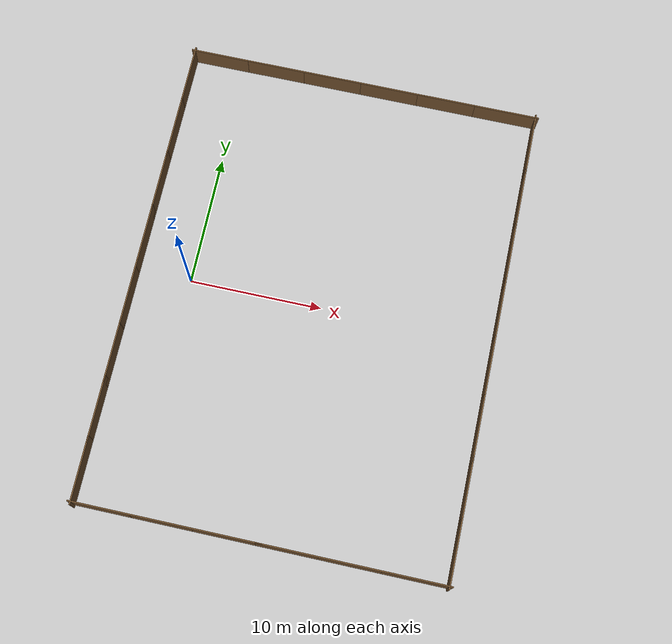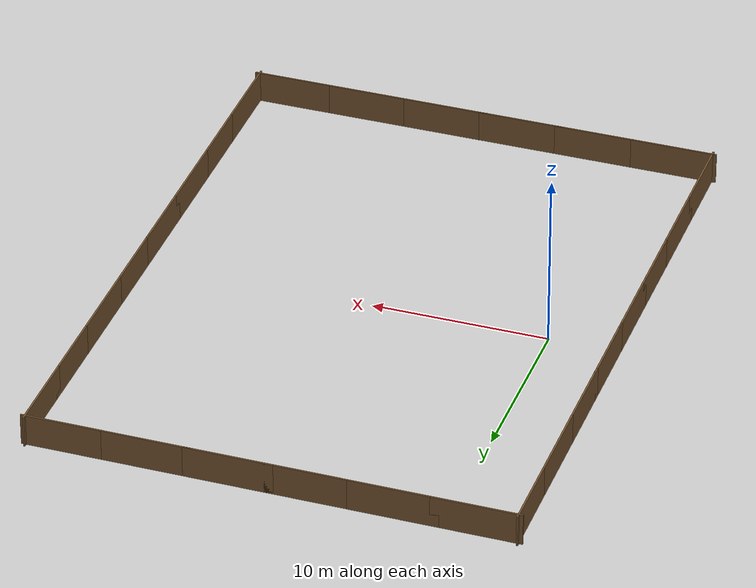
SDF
<sdf version="1.9">
 <world name="orchard_map_c">
  <physics name="fast" type="ode">
   <max_step_size>0.01</max_step_size>
   <real_time_factor>1.0</real_time_factor>
   <real_time_update_rate>100</real_time_update_rate>
  </physics>
  <plugin filename="ignition-gazebo-physics-system" name="ignition::gazebo::systems::Physics"/>
  <plugin filename="ignition-gazebo-user-commands-system" name="ignition::gazebo::systems::UserCommands"/>
  <plugin filename="ignition-gazebo-scene-broadcaster-system" name="ignition::gazebo::systems::SceneBroadcaster"/>
  <plugin filename="ignition-gazebo-sensors-system" name="ignition::gazebo::systems::Sensors">
   <render_engine>ogre2</render_engine>
  </plugin>
  <plugin filename="ignition-gazebo-imu-system" name="ignition::gazebo::systems::Imu"/>
  <plugin filename="ignition-gazebo-navsat-system" name="ignition::gazebo::systems::NavSat"/>
  <plugin filename="ignition-gazebo-contact-system" name="ignition::gazebo::systems::Contact"/>
  <spherical_coordinates>
   <surface_model>EARTH_WGS84</surface_model>
   <latitude_deg>37.3611</latitude_deg>
   <longitude_deg>-120.4322</longitude_deg>
   <elevation>0.0</elevation>
   <heading_deg>0</heading_deg>
  </spherical_coordinates>
  <gravity>0 0 -9.8</gravity>
  <light type="directional" name="sun">
   <cast_shadows>false</cast_shadows>
   <pose>0 0 20 0 0 0</pose>
   <diffuse>0.95 0.95 0.9 1</diffuse>
   <specular>0.3 0.3 0.3 1</specular>
   <direction>-0.3 0.1 -0.9</direction>
  </light>
  <light type="directional" name="fill">
   <cast_shadows>false</cast_shadows>
   <pose>0 0 10 0 0 0</pose>
   <diffuse>0.4 0.45 0.5 1</diffuse>
   <direction>0.5 -0.2 -0.5</direction>
  </light>
  <scene>
   <ambient>0.4 0.4 0.4 1</ambient>
   <background>0.7 0.75 0.85 1</background>
   <shadows>false</shadows>
  </scene>
  <include><uri>model://fence</uri><name>ofence_w_01</name><pose>-4.0000 -15.7500 0 0 0 0.0000</pose></include>
  <include><uri>model://fence</uri><name>ofence_w_02</name><pose>-4.0000 -11.2500 0 0 0 0.0000</pose></include>
  <include><uri>model://fence</uri><name>ofence_w_03</name><pose>-4.0000 -6.7500 0 0 0 0.0000</pose></include>
  <include><uri>model://fence</uri><name>ofence_w_04</name><pose>-4.0000 -2.2500 0 0 0 0.0000</pose></include>
  <include><uri>model://fence</uri><name>ofence_w_05</name><pose>-4.0000 2.2500 0 0 0 0.0000</pose></include>
  <include><uri>model://fence</uri><name>ofence_w_06</name><pose>-4.0000 6.7500 0 0 0 0.0000</pose></include>
  <include><uri>model://fence</uri><name>ofence_w_07</name><pose>-4.0000 11.2500 0 0 0 0.0000</pose></include>
  <include><uri>model://fence</uri><name>ofence_w_08</name><pose>-4.0000 15.7500 0 0 0 0.0000</pose></include>
  <include><uri>model://fence</uri><name>ofence_e_09</name><pose>23.0000 -15.7500 0 0 0 0.0000</pose></include>
  <include><uri>model://fence</uri><name>ofence_e_10</name><pose>23.0000 -11.2500 0 0 0 0.0000</pose></include>
  <include><uri>model://fence</uri><name>ofence_e_11</name><pose>23.0000 -6.7500 0 0 0 0.0000</pose></include>
  <include><uri>model://fence</uri><name>ofence_e_12</name><pose>23.0000 -2.2500 0 0 0 0.0000</pose></include>
  <include><uri>model://fence</uri><name>ofence_e_13</name><pose>23.0000 2.2500 0 0 0 0.0000</pose></include>
  <include><uri>model://fence</uri><name>ofence_e_14</name><pose>23.0000 6.7500 0 0 0 0.0000</pose></include>
  <include><uri>model://fence</uri><name>ofence_e_15</name><pose>23.0000 11.2500 0 0 0 0.0000</pose></include>
  <include><uri>model://fence</uri><name>ofence_e_16</name><pose>23.0000 15.7500 0 0 0 0.0000</pose></include>
  <include><uri>model://fence</uri><name>ofence_s_17</name><pose>-1.7500 -18.0000 0 0 0 1.5708</pose></include>
  <include><uri>model://fence</uri><name>ofence_s_18</name><pose>2.7500 -18.0000 0 0 0 1.5708</pose></include>
  <include><uri>model://fence</uri><name>ofence_s_19</name><pose>7.2500 -18.0000 0 0 0 1.5708</pose></include>
  <include><uri>model://fence</uri><name>ofence_s_20</name><pose>11.7500 -18.0000 0 0 0 1.5708</pose></include>
  <include><uri>model://fence</uri><name>ofence_s_21</name><pose>16.2500 -18.0000 0 0 0 1.5708</pose></include>
  <include><uri>model://fence</uri><name>ofence_s_22</name><pose>20.7500 -18.0000 0 0 0 1.5708</pose></include>
  <include><uri>model://fence</uri><name>ofence_n_23</name><pose>-1.7500 18.0000 0 0 0 1.5708</pose></include>
  <include><uri>model://fence</uri><name>ofence_n_24</name><pose>2.7500 18.0000 0 0 0 1.5708</pose></include>
  <include><uri>model://fence</uri><name>ofence_n_25</name><pose>7.2500 18.0000 0 0 0 1.5708</pose></include>
  <include><uri>model://fence</uri><name>ofence_n_26</name><pose>11.7500 18.0000 0 0 0 1.5708</pose></include>
  <include><uri>model://fence</uri><name>ofence_n_27</name><pose>16.2500 18.0000 0 0 0 1.5708</pose></include>
  <include><uri>model://fence</uri><name>ofence_n_28</name><pose>20.7500 18.0000 0 0 0 1.5708</pose></include>
 </world>
</sdf>

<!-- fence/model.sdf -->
<sdf version="1.5">
  <model name="fence">
    <static>true</static>
    <link name="link">
      <pose>0 0 0.915 0 0 0</pose>
      <collision name="collision">
        <geometry>
          <box>
            <size>0.1 5. 1.83</size>
          </box>
        </geometry>
      </collision>
      <visual name="visual">
        <cast_shadows>false</cast_shadows>
        <geometry>
          <box>
            <size>0.1 5. 1.83</size>
          </box>
        </geometry>
        <material>
          <ambient>0.35 0.25 0.15 1</ambient>
          <diffuse>0.45 0.32 0.18 1</diffuse>
          <specular>0.1 0.1 0.1 1</specular>
          <pbr>
            <metal>
              <albedo_map>model://fence/materials/textures/woodboarding4.jpg</albedo_map>
              <metalness>0.0</metalness>
              <roughness>0.8</roughness>
            </metal>
          </pbr>
        </material>
      </visual>
    </link>
  </model>
</sdf>
